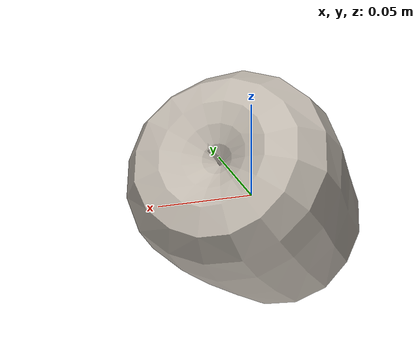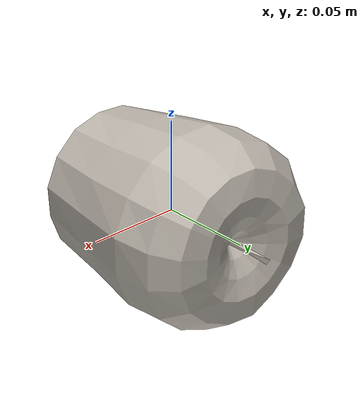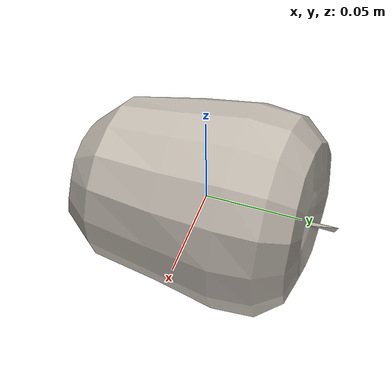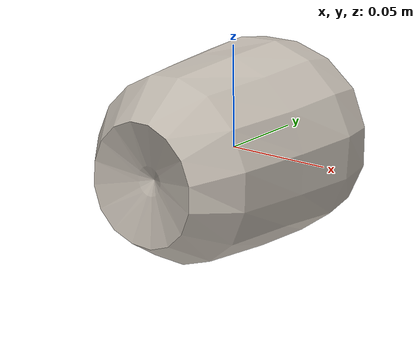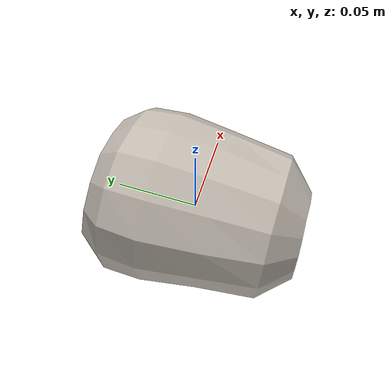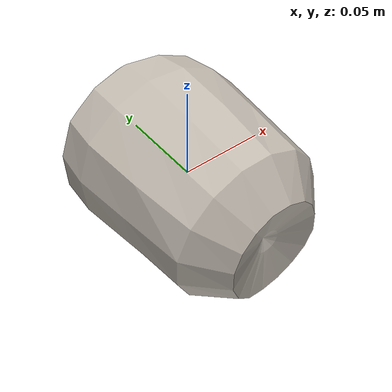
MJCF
<mujoco model="Apple_9">
  <compiler autolimits="true" boundmass="0.01" angle="radian"/>
  <default>
    <default class="/">
      <default class="__VISUAL_MJT__">
        <geom contype="0" conaffinity="0" group="0"/>
      </default>
      <default class="__STRUCTURAL_MJT__">
        <geom contype="8" conaffinity="15" group="4" friction="0.90000000000000002 0.90000000000000002 0.001" solref="0.025000000000000001 1" solimp="0.998 0.998 0.001"/>
      </default>
      <default class="__DYNAMIC_MJT__">
        <geom contype="1" conaffinity="15" group="4" friction="0.90000000000000002 0.90000000000000002 0.001" solref="0.025000000000000001 1" solimp="0.998 0.998 0.001"/>
      </default>
    </default>
  </default>
  <asset>
    <texture name="Apple1_Mat1" type="2d" file="Apple1_AlbedoTransparency1.png"/>
    <material name="material_Apple1_Mat1" class="/" texture="Apple1_Mat1" specular="0.5" shininess="0.5" rgba="1 1 1 1"/>
    <mesh name="Apple_9_apple_a9" class="/" file="Apple_9_apple_a9/Apple_9_apple_a9.obj" scale="1 1 1"/>
  </asset>
  <worldbody>
    <body name="Apple_9">
      <joint name="Apple_9_free" class="/" type="free" pos="0 0 0" axis="0 0 1" stiffness="0" range="0 0" armature="0" damping="0.10000000000000001" frictionloss="0"/>
      <body name="Apple_9_apple_a9" pos="-0 -0.0037299999999999998 0" quat="1 0 0 0">
        <geom name="Apple_9_apple_a9" class="__VISUAL_MJT__" type="mesh" material="material_Apple1_Mat1" shellinertia="false" mesh="Apple_9_apple_a9"/>
        <geom name="Apple_9_PrimitiveCollider_0" class="__DYNAMIC_MJT__" type="capsule" size="0.054050590842962265 0.018514897674322128" rgba="0 1 0 1" pos="-0 0.0037343278527259827 0" quat="0.70710678118654757 0.70710678118654746 0 0"/>
      </body>
    </body>
  </worldbody>
</mujoco>
